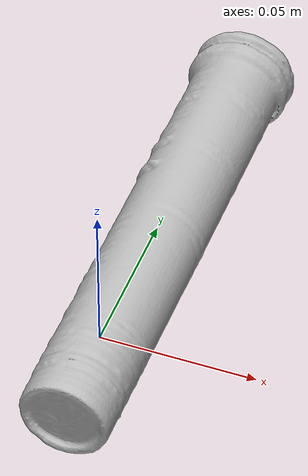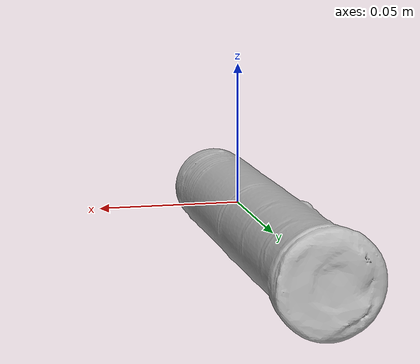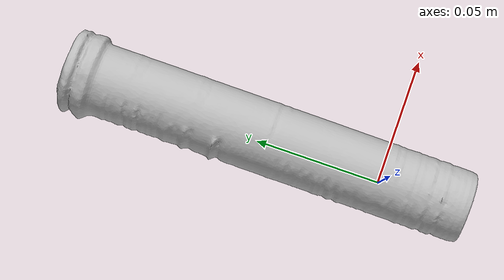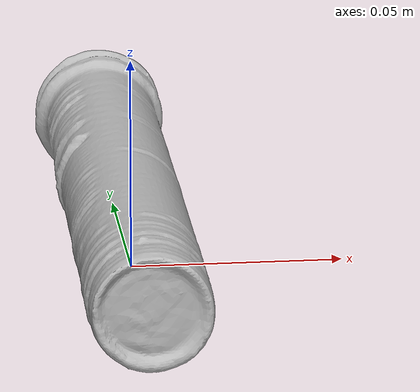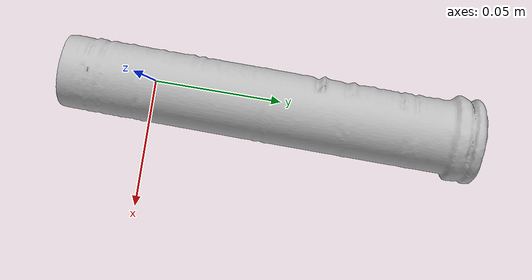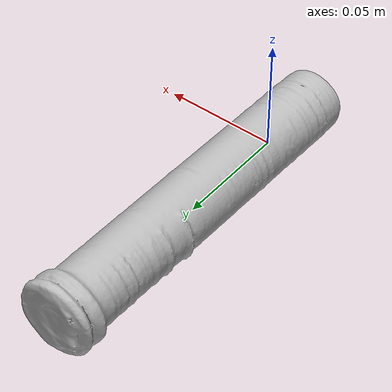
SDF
<?xml version='1.0'?>
<sdf version="1.4">
  <model name="FizzyTabletsCalcium">
    <static>false</static>
    <link name="link">
      <inertial>
        <pose>0.0022434507048682373 0.05109630569672801 0.0010888882641345095 1.5975788950107712 -0.8942045749620097 -0.02733130853326813</pose>
        <mass>0.012784987577070788</mass>
        <inertia>
          <ixx>2.921089721441005e-05</ixx>
          <ixy>3.2447588953683993e-22</ixy>
          <ixz>1.115117604172011e-22</ixz>
          <iyy>2.920648549770294e-05</iyy>
          <iyz>1.3567897794972989e-22</iyz>
          <izz>1.5949244299380032e-06</izz>
        </inertia>
      </inertial>
      <collision name="collision">
        <geometry>
          <mesh>
            <!-- Use a downsampled mesh for collisions -->
            <uri>model:///FizzyTabletsCalcium/FizzyTabletsCalcium_250_collision.obj</uri>
	        </mesh>
        </geometry>
        <surface>
      </surface>
      </collision>
      <visual name="visual">
        <geometry>
          <mesh>
            <uri>model:///FizzyTabletsCalcium/FizzyTabletsCalcium_25k_tex.obj</uri>
	        </mesh>
        </geometry>
        <material>
          <script>
            <uri>model:///FizzyTabletsCalcium/FizzyTabletsCalcium.material</uri>
            <name>FizzyTabletsCalcium</name>
          </script>
        </material>
      </visual>
    </link>
  </model>
</sdf>
